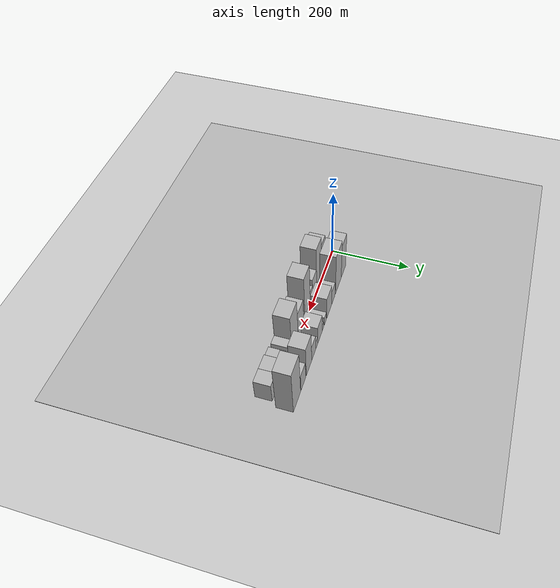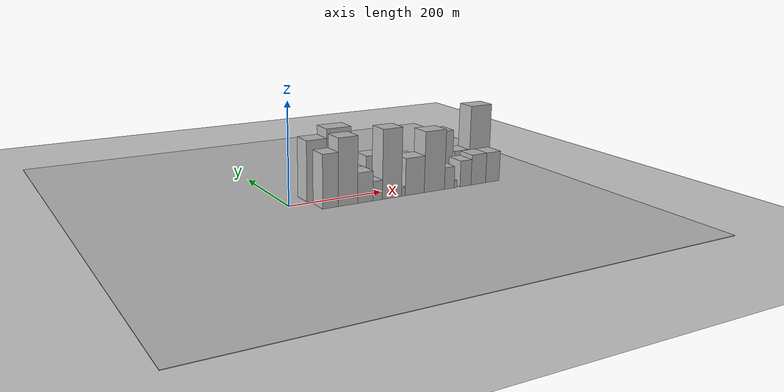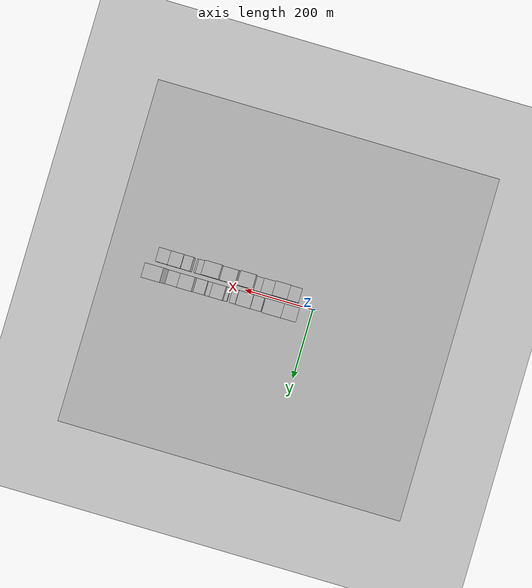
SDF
<?xml version="1.0" encoding="utf-8"?>

<sdf version="1.6">

   <world name="default">

      <gui fullscreen="0">

         <camera name="user_camera">

            <pose>-15 0 4.57585 0 0 0</pose>

            <view_controller>orbit</view_controller>

         </camera>

      </gui>

      <scene>

         <sky>

           <clouds>

             <speed>12</speed>

           </clouds>

         </sky>

         <ambient>0.4 0.4 0.4 1</ambient>

         <background>0.7 0.7 0.7 1</background>

         <shadows>1</shadows>

      </scene>

      <gravity>0 0 -9.8066</gravity>

      <magnetic_field>6e-06 2.3e-05 -4.2e-05</magnetic_field>

      <physics default="0" name="default_physics" type="ode">

         <ode>

            <solver>

               <type>quick</type>

               <iters>10</iters>

               <sor>1.0</sor>

               <use_dynamic_moi_rescaling>0</use_dynamic_moi_rescaling>

            </solver>

            <constraints>

               <cfm>0</cfm>

               <erp>0.2</erp>

               <contact_max_correcting_vel>100</contact_max_correcting_vel>

               <contact_surface_layer>0.001</contact_surface_layer>

            </constraints>

         </ode>

         <max_step_size>0.004</max_step_size>

         <real_time_factor>1</real_time_factor>

         <real_time_update_rate>250</real_time_update_rate>

      </physics>

      <light name="sun" type="directional">

         <cast_shadows>1</cast_shadows>

         <pose>0 0 10 0 0 0</pose>

         <diffuse>0.8 0.8 0.8 1</diffuse>

         <specular>0.2 0.2 0.2 1</specular>

         <attenuation>

            <range>1000</range>

            <constant>0.9</constant>

            <linear>0.01</linear>

            <quadratic>0.001</quadratic>

         </attenuation>

         <direction>-0.5 0.1 -0.9</direction>

      </light>

      <include>

         <name>ground_plane_1</name>

         <uri>model://HANNAS_ground_plane</uri>

         <pose>0 0 0  0 0 0</pose>

      </include>

      <include>

         <name>ground_plane_2</name>

         <uri>model://HANNAS_ground_plane</uri>

         <pose>100 0 0  0 0 0</pose>

      </include>

      <model name="building_1">

         <static>1</static>

         <pose frame="">61.1157 26.0000 0 0.000000 0.000000 1.570796</pose>

         <link name="link">

            <pose frame="">0 0 60.00 0 0 0</pose>

            <collision name="collision">

               <geometry>

                  <box>

                     <size>40.0000 42.2314 120.0000</size>

                  </box>

               </geometry>

               <max_contacts>10</max_contacts>

               <surface>

                  <contact>

                     <ode/>

                  </contact>

                  <bounce/>

                  <friction>

                     <torsional>

                        <ode/>

                     </torsional>

                     <ode/>

                  </friction>

               </surface>

            </collision>

            <visual name="visual">

               <cast_shadows>0</cast_shadows>

               <geometry>

                  <box>

                     <size>40.0000 42.2314 120.0000</size>

                  </box>

               </geometry>

               <material>

                  <script>

                     <uri>model://HANNAS_wall/materials/scripts</uri>

                     <uri>model://HANNAS_wall/materials/textures</uri>

                     <name>vrc/HANNAS_wall</name>

                  </script>

               </material>

            </visual>

            <self_collide>0</self_collide>

            <enable_wind>0</enable_wind>

            <kinematic>0</kinematic>

         </link>

      </model>

      <model name="building_2">

         <static>1</static>

         <pose frame="">108.6047 26.0000 0 0.000000 0.000000 1.570796</pose>

         <link name="link">

            <pose frame="">0 0 69.00 0 0 0</pose>

            <collision name="collision">

               <geometry>

                  <box>

                     <size>40.0000 52.7466 138.0000</size>

                  </box>

               </geometry>

               <max_contacts>10</max_contacts>

               <surface>

                  <contact>

                     <ode/>

                  </contact>

                  <bounce/>

                  <friction>

                     <torsional>

                        <ode/>

                     </torsional>

                     <ode/>

                  </friction>

               </surface>

            </collision>

            <visual name="visual">

               <cast_shadows>0</cast_shadows>

               <geometry>

                  <box>

                     <size>40.0000 52.7466 138.0000</size>

                  </box>

               </geometry>

               <material>

                  <script>

                     <uri>model://HANNAS_wall/materials/scripts</uri>

                     <uri>model://HANNAS_wall/materials/textures</uri>

                     <name>vrc/HANNAS_wall</name>

                  </script>

               </material>

            </visual>

            <self_collide>0</self_collide>

            <enable_wind>0</enable_wind>

            <kinematic>0</kinematic>

         </link>

      </model>

      <model name="building_3">

         <static>1</static>

         <pose frame="">154.1346 26.0000 0 0.000000 0.000000 1.570796</pose>

         <link name="link">

            <pose frame="">0 0 25.50 0 0 0</pose>

            <collision name="collision">

               <geometry>

                  <box>

                     <size>40.0000 30.3133 51.0000</size>

                  </box>

               </geometry>

               <max_contacts>10</max_contacts>

               <surface>

                  <contact>

                     <ode/>

                  </contact>

                  <bounce/>

                  <friction>

                     <torsional>

                        <ode/>

                     </torsional>

                     <ode/>

                  </friction>

               </surface>

            </collision>

            <visual name="visual">

               <cast_shadows>0</cast_shadows>

               <geometry>

                  <box>

                     <size>40.0000 30.3133 51.0000</size>

                  </box>

               </geometry>

               <material>

                  <script>

                     <uri>model://HANNAS_wall/materials/scripts</uri>

                     <uri>model://HANNAS_wall/materials/textures</uri>

                     <name>vrc/HANNAS_wall</name>

                  </script>

               </material>

            </visual>

            <self_collide>0</self_collide>

            <enable_wind>0</enable_wind>

            <kinematic>0</kinematic>

         </link>

      </model>

      <model name="building_4">

         <static>1</static>

         <pose frame="">189.9944 26.0000 0 0.000000 0.000000 1.570796</pose>

         <link name="link">

            <pose frame="">0 0 37.50 0 0 0</pose>

            <collision name="collision">

               <geometry>

                  <box>

                     <size>40.0000 41.4063 75.0000</size>

                  </box>

               </geometry>

               <max_contacts>10</max_contacts>

               <surface>

                  <contact>

                     <ode/>

                  </contact>

                  <bounce/>

                  <friction>

                     <torsional>

                        <ode/>

                     </torsional>

                     <ode/>

                  </friction>

               </surface>

            </collision>

            <visual name="visual">

               <cast_shadows>0</cast_shadows>

               <geometry>

                  <box>

                     <size>40.0000 41.4063 75.0000</size>

                  </box>

               </geometry>

               <material>

                  <script>

                     <uri>model://HANNAS_wall/materials/scripts</uri>

                     <uri>model://HANNAS_wall/materials/textures</uri>

                     <name>vrc/HANNAS_wall</name>

                  </script>

               </material>

            </visual>

            <self_collide>0</self_collide>

            <enable_wind>0</enable_wind>

            <kinematic>0</kinematic>

         </link>

      </model>

      <model name="building_5">

         <static>1</static>

         <pose frame="">222.4743 26.0000 0 0.000000 0.000000 1.570796</pose>

         <link name="link">

            <pose frame="">0 0 15.00 0 0 0</pose>

            <collision name="collision">

               <geometry>

                  <box>

                     <size>40.0000 17.5535 30.0000</size>

                  </box>

               </geometry>

               <max_contacts>10</max_contacts>

               <surface>

                  <contact>

                     <ode/>

                  </contact>

                  <bounce/>

                  <friction>

                     <torsional>

                        <ode/>

                     </torsional>

                     <ode/>

                  </friction>

               </surface>

            </collision>

            <visual name="visual">

               <cast_shadows>0</cast_shadows>

               <geometry>

                  <box>

                     <size>40.0000 17.5535 30.0000</size>

                  </box>

               </geometry>

               <material>

                  <script>

                     <uri>model://HANNAS_wall/materials/scripts</uri>

                     <uri>model://HANNAS_wall/materials/textures</uri>

                     <name>vrc/HANNAS_wall</name>

                  </script>

               </material>

            </visual>

            <self_collide>0</self_collide>

            <enable_wind>0</enable_wind>

            <kinematic>0</kinematic>

         </link>

      </model>

      <model name="building_6">

         <static>1</static>

         <pose frame="">243.4711 26.0000 0 0.000000 0.000000 1.570796</pose>

         <link name="link">

            <pose frame="">0 0 12.00 0 0 0</pose>

            <collision name="collision">

               <geometry>

                  <box>

                     <size>40.0000 10.4401 24.0000</size>

                  </box>

               </geometry>

               <max_contacts>10</max_contacts>

               <surface>

                  <contact>

                     <ode/>

                  </contact>

                  <bounce/>

                  <friction>

                     <torsional>

                        <ode/>

                     </torsional>

                     <ode/>

                  </friction>

               </surface>

            </collision>

            <visual name="visual">

               <cast_shadows>0</cast_shadows>

               <geometry>

                  <box>

                     <size>40.0000 10.4401 24.0000</size>

                  </box>

               </geometry>

               <material>

                  <script>

                     <uri>model://HANNAS_wall/materials/scripts</uri>

                     <uri>model://HANNAS_wall/materials/textures</uri>

                     <name>vrc/HANNAS_wall</name>

                  </script>

               </material>

            </visual>

            <self_collide>0</self_collide>

            <enable_wind>0</enable_wind>

            <kinematic>0</kinematic>

         </link>

      </model>

      <model name="building_7">

         <static>1</static>

         <pose frame="">267.3590 26.0000 0 0.000000 0.000000 1.570796</pose>

         <link name="link">

            <pose frame="">0 0 31.50 0 0 0</pose>

            <collision name="collision">

               <geometry>

                  <box>

                     <size>40.0000 37.3355 63.0000</size>

                  </box>

               </geometry>

               <max_contacts>10</max_contacts>

               <surface>

                  <contact>

                     <ode/>

                  </contact>

                  <bounce/>

                  <friction>

                     <torsional>

                        <ode/>

                     </torsional>

                     <ode/>

                  </friction>

               </surface>

            </collision>

            <visual name="visual">

               <cast_shadows>0</cast_shadows>

               <geometry>

                  <box>

                     <size>40.0000 37.3355 63.0000</size>

                  </box>

               </geometry>

               <material>

                  <script>

                     <uri>model://HANNAS_wall/materials/scripts</uri>

                     <uri>model://HANNAS_wall/materials/textures</uri>

                     <name>vrc/HANNAS_wall</name>

                  </script>

               </material>

            </visual>

            <self_collide>0</self_collide>

            <enable_wind>0</enable_wind>

            <kinematic>0</kinematic>

         </link>

      </model>

      <model name="building_8">

         <static>1</static>

         <pose frame="">293.7694 26.0000 0 0.000000 0.000000 1.570796</pose>

         <link name="link">

            <pose frame="">0 0 15.00 0 0 0</pose>

            <collision name="collision">

               <geometry>

                  <box>

                     <size>40.0000 15.4853 30.0000</size>

                  </box>

               </geometry>

               <max_contacts>10</max_contacts>

               <surface>

                  <contact>

                     <ode/>

                  </contact>

                  <bounce/>

                  <friction>

                     <torsional>

                        <ode/>

                     </torsional>

                     <ode/>

                  </friction>

               </surface>

            </collision>

            <visual name="visual">

               <cast_shadows>0</cast_shadows>

               <geometry>

                  <box>

                     <size>40.0000 15.4853 30.0000</size>

                  </box>

               </geometry>

               <material>

                  <script>

                     <uri>model://HANNAS_wall/materials/scripts</uri>

                     <uri>model://HANNAS_wall/materials/textures</uri>

                     <name>vrc/HANNAS_wall</name>

                  </script>

               </material>

            </visual>

            <self_collide>0</self_collide>

            <enable_wind>0</enable_wind>

            <kinematic>0</kinematic>

         </link>

      </model>

      <model name="building_9">

         <static>1</static>

         <pose frame="">317.3973 26.0000 0 0.000000 0.000000 1.570796</pose>

         <link name="link">

            <pose frame="">0 0 27.00 0 0 0</pose>

            <collision name="collision">

               <geometry>

                  <box>

                     <size>40.0000 31.7705 54.0000</size>

                  </box>

               </geometry>

               <max_contacts>10</max_contacts>

               <surface>

                  <contact>

                     <ode/>

                  </contact>

                  <bounce/>

                  <friction>

                     <torsional>

                        <ode/>

                     </torsional>

                     <ode/>

                  </friction>

               </surface>

            </collision>

            <visual name="visual">

               <cast_shadows>0</cast_shadows>

               <geometry>

                  <box>

                     <size>40.0000 31.7705 54.0000</size>

                  </box>

               </geometry>

               <material>

                  <script>

                     <uri>model://HANNAS_wall/materials/scripts</uri>

                     <uri>model://HANNAS_wall/materials/textures</uri>

                     <name>vrc/HANNAS_wall</name>

                  </script>

               </material>

            </visual>

            <self_collide>0</self_collide>

            <enable_wind>0</enable_wind>

            <kinematic>0</kinematic>

         </link>

      </model>

      <model name="building_10">

         <static>1</static>

         <pose frame="">353.7709 26.0000 0 0.000000 0.000000 1.570796</pose>

         <link name="link">

            <pose frame="">0 0 52.50 0 0 0</pose>

            <collision name="collision">

               <geometry>

                  <box>

                     <size>40.0000 40.9767 105.0000</size>

                  </box>

               </geometry>

               <max_contacts>10</max_contacts>

               <surface>

                  <contact>

                     <ode/>

                  </contact>

                  <bounce/>

                  <friction>

                     <torsional>

                        <ode/>

                     </torsional>

                     <ode/>

                  </friction>

               </surface>

            </collision>

            <visual name="visual">

               <cast_shadows>0</cast_shadows>

               <geometry>

                  <box>

                     <size>40.0000 40.9767 105.0000</size>

                  </box>

               </geometry>

               <material>

                  <script>

                     <uri>model://HANNAS_wall/materials/scripts</uri>

                     <uri>model://HANNAS_wall/materials/textures</uri>

                     <name>vrc/HANNAS_wall</name>

                  </script>

               </material>

            </visual>

            <self_collide>0</self_collide>

            <enable_wind>0</enable_wind>

            <kinematic>0</kinematic>

         </link>

      </model>

      <model name="building_11">

         <static>1</static>

         <pose frame="">395.6254 26.0000 0 0.000000 0.000000 1.570796</pose>

         <link name="link">

            <pose frame="">0 0 30.00 0 0 0</pose>

            <collision name="collision">

               <geometry>

                  <box>

                     <size>40.0000 34.7324 60.0000</size>

                  </box>

               </geometry>

               <max_contacts>10</max_contacts>

               <surface>

                  <contact>

                     <ode/>

                  </contact>

                  <bounce/>

                  <friction>

                     <torsional>

                        <ode/>

                     </torsional>

                     <ode/>

                  </friction>

               </surface>

            </collision>

            <visual name="visual">

               <cast_shadows>0</cast_shadows>

               <geometry>

                  <box>

                     <size>40.0000 34.7324 60.0000</size>

                  </box>

               </geometry>

               <material>

                  <script>

                     <uri>model://HANNAS_wall/materials/scripts</uri>

                     <uri>model://HANNAS_wall/materials/textures</uri>

                     <name>vrc/HANNAS_wall</name>

                  </script>

               </material>

            </visual>

            <self_collide>0</self_collide>

            <enable_wind>0</enable_wind>

            <kinematic>0</kinematic>

         </link>

      </model>

      <model name="building_12">

         <static>1</static>

         <pose frame="">441.6697 26.0000 0 0.000000 0.000000 1.570796</pose>

         <link name="link">

            <pose frame="">0 0 75.00 0 0 0</pose>

            <collision name="collision">

               <geometry>

                  <box>

                     <size>40.0000 51.3561 150.0000</size>

                  </box>

               </geometry>

               <max_contacts>10</max_contacts>

               <surface>

                  <contact>

                     <ode/>

                  </contact>

                  <bounce/>

                  <friction>

                     <torsional>

                        <ode/>

                     </torsional>

                     <ode/>

                  </friction>

               </surface>

            </collision>

            <visual name="visual">

               <cast_shadows>0</cast_shadows>

               <geometry>

                  <box>

                     <size>40.0000 51.3561 150.0000</size>

                  </box>

               </geometry>

               <material>

                  <script>

                     <uri>model://HANNAS_wall/materials/scripts</uri>

                     <uri>model://HANNAS_wall/materials/textures</uri>

                     <name>vrc/HANNAS_wall</name>

                  </script>

               </material>

            </visual>

            <self_collide>0</self_collide>

            <enable_wind>0</enable_wind>

            <kinematic>0</kinematic>

         </link>

      </model>

      <model name="building_13">

         <static>1</static>

         <pose frame="">63.2880 -26.0000 0 0.000000 0.000000 1.570796</pose>

         <link name="link">

            <pose frame="">0 0 52.50 0 0 0</pose>

            <collision name="collision">

               <geometry>

                  <box>

                     <size>40.0000 32.5760 105.0000</size>

                  </box>

               </geometry>

               <max_contacts>10</max_contacts>

               <surface>

                  <contact>

                     <ode/>

                  </contact>

                  <bounce/>

                  <friction>

                     <torsional>

                        <ode/>

                     </torsional>

                     <ode/>

                  </friction>

               </surface>

            </collision>

            <visual name="visual">

               <cast_shadows>0</cast_shadows>

               <geometry>

                  <box>

                     <size>40.0000 32.5760 105.0000</size>

                  </box>

               </geometry>

               <material>

                  <script>

                     <uri>model://HANNAS_wall/materials/scripts</uri>

                     <uri>model://HANNAS_wall/materials/textures</uri>

                     <name>vrc/HANNAS_wall</name>

                  </script>

               </material>

            </visual>

            <self_collide>0</self_collide>

            <enable_wind>0</enable_wind>

            <kinematic>0</kinematic>

         </link>

      </model>

      <model name="building_14">

         <static>1</static>

         <pose frame="">100.4013 -26.0000 0 0.000000 0.000000 1.570796</pose>

         <link name="link">

            <pose frame="">0 0 66.00 0 0 0</pose>

            <collision name="collision">

               <geometry>

                  <box>

                     <size>40.0000 41.6508 132.0000</size>

                  </box>

               </geometry>

               <max_contacts>10</max_contacts>

               <surface>

                  <contact>

                     <ode/>

                  </contact>

                  <bounce/>

                  <friction>

                     <torsional>

                        <ode/>

                     </torsional>

                     <ode/>

                  </friction>

               </surface>

            </collision>

            <visual name="visual">

               <cast_shadows>0</cast_shadows>

               <geometry>

                  <box>

                     <size>40.0000 41.6508 132.0000</size>

                  </box>

               </geometry>

               <material>

                  <script>

                     <uri>model://HANNAS_wall/materials/scripts</uri>

                     <uri>model://HANNAS_wall/materials/textures</uri>

                     <name>vrc/HANNAS_wall</name>

                  </script>

               </material>

            </visual>

            <self_collide>0</self_collide>

            <enable_wind>0</enable_wind>

            <kinematic>0</kinematic>

         </link>

      </model>

      <model name="building_15">

         <static>1</static>

         <pose frame="">137.9623 -26.0000 0 0.000000 0.000000 1.570796</pose>

         <link name="link">

            <pose frame="">0 0 30.00 0 0 0</pose>

            <collision name="collision">

               <geometry>

                  <box>

                     <size>40.0000 33.4712 60.0000</size>

                  </box>

               </geometry>

               <max_contacts>10</max_contacts>

               <surface>

                  <contact>

                     <ode/>

                  </contact>

                  <bounce/>

                  <friction>

                     <torsional>

                        <ode/>

                     </torsional>

                     <ode/>

                  </friction>

               </surface>

            </collision>

            <visual name="visual">

               <cast_shadows>0</cast_shadows>

               <geometry>

                  <box>

                     <size>40.0000 33.4712 60.0000</size>

                  </box>

               </geometry>

               <material>

                  <script>

                     <uri>model://HANNAS_wall/materials/scripts</uri>

                     <uri>model://HANNAS_wall/materials/textures</uri>

                     <name>vrc/HANNAS_wall</name>

                  </script>

               </material>

            </visual>

            <self_collide>0</self_collide>

            <enable_wind>0</enable_wind>

            <kinematic>0</kinematic>

         </link>

      </model>

      <model name="building_16">

         <static>1</static>

         <pose frame="">165.0744 -26.0000 0 0.000000 0.000000 1.570796</pose>

         <link name="link">

            <pose frame="">0 0 19.50 0 0 0</pose>

            <collision name="collision">

               <geometry>

                  <box>

                     <size>40.0000 20.7530 39.0000</size>

                  </box>

               </geometry>

               <max_contacts>10</max_contacts>

               <surface>

                  <contact>

                     <ode/>

                  </contact>

                  <bounce/>

                  <friction>

                     <torsional>

                        <ode/>

                     </torsional>

                     <ode/>

                  </friction>

               </surface>

            </collision>

            <visual name="visual">

               <cast_shadows>0</cast_shadows>

               <geometry>

                  <box>

                     <size>40.0000 20.7530 39.0000</size>

                  </box>

               </geometry>

               <material>

                  <script>

                     <uri>model://HANNAS_wall/materials/scripts</uri>

                     <uri>model://HANNAS_wall/materials/textures</uri>

                     <name>vrc/HANNAS_wall</name>

                  </script>

               </material>

            </visual>

            <self_collide>0</self_collide>

            <enable_wind>0</enable_wind>

            <kinematic>0</kinematic>

         </link>

      </model>

      <model name="building_17">

         <static>1</static>

         <pose frame="">197.0286 -26.0000 0 0.000000 0.000000 1.570796</pose>

         <link name="link">

            <pose frame="">0 0 69.00 0 0 0</pose>

            <collision name="collision">

               <geometry>

                  <box>

                     <size>40.0000 43.1554 138.0000</size>

                  </box>

               </geometry>

               <max_contacts>10</max_contacts>

               <surface>

                  <contact>

                     <ode/>

                  </contact>

                  <bounce/>

                  <friction>

                     <torsional>

                        <ode/>

                     </torsional>

                     <ode/>

                  </friction>

               </surface>

            </collision>

            <visual name="visual">

               <cast_shadows>0</cast_shadows>

               <geometry>

                  <box>

                     <size>40.0000 43.1554 138.0000</size>

                  </box>

               </geometry>

               <material>

                  <script>

                     <uri>model://HANNAS_wall/materials/scripts</uri>

                     <uri>model://HANNAS_wall/materials/textures</uri>

                     <name>vrc/HANNAS_wall</name>

                  </script>

               </material>

            </visual>

            <self_collide>0</self_collide>

            <enable_wind>0</enable_wind>

            <kinematic>0</kinematic>

         </link>

      </model>

      <model name="building_18">

         <static>1</static>

         <pose frame="">222.9706 -26.0000 0 0.000000 0.000000 1.570796</pose>

         <link name="link">

            <pose frame="">0 0 9.00 0 0 0</pose>

            <collision name="collision">

               <geometry>

                  <box>

                     <size>40.0000 8.7285 18.0000</size>

                  </box>

               </geometry>

               <max_contacts>10</max_contacts>

               <surface>

                  <contact>

                     <ode/>

                  </contact>

                  <bounce/>

                  <friction>

                     <torsional>

                        <ode/>

                     </torsional>

                     <ode/>

                  </friction>

               </surface>

            </collision>

            <visual name="visual">

               <cast_shadows>0</cast_shadows>

               <geometry>

                  <box>

                     <size>40.0000 8.7285 18.0000</size>

                  </box>

               </geometry>

               <material>

                  <script>

                     <uri>model://HANNAS_wall/materials/scripts</uri>

                     <uri>model://HANNAS_wall/materials/textures</uri>

                     <name>vrc/HANNAS_wall</name>

                  </script>

               </material>

            </visual>

            <self_collide>0</self_collide>

            <enable_wind>0</enable_wind>

            <kinematic>0</kinematic>

         </link>

      </model>

      <model name="building_19">

         <static>1</static>

         <pose frame="">249.3120 -26.0000 0 0.000000 0.000000 1.570796</pose>

         <link name="link">

            <pose frame="">0 0 37.50 0 0 0</pose>

            <collision name="collision">

               <geometry>

                  <box>

                     <size>40.0000 43.9543 75.0000</size>

                  </box>

               </geometry>

               <max_contacts>10</max_contacts>

               <surface>

                  <contact>

                     <ode/>

                  </contact>

                  <bounce/>

                  <friction>

                     <torsional>

                        <ode/>

                     </torsional>

                     <ode/>

                  </friction>

               </surface>

            </collision>

            <visual name="visual">

               <cast_shadows>0</cast_shadows>

               <geometry>

                  <box>

                     <size>40.0000 43.9543 75.0000</size>

                  </box>

               </geometry>

               <material>

                  <script>

                     <uri>model://HANNAS_wall/materials/scripts</uri>

                     <uri>model://HANNAS_wall/materials/textures</uri>

                     <name>vrc/HANNAS_wall</name>

                  </script>

               </material>

            </visual>

            <self_collide>0</self_collide>

            <enable_wind>0</enable_wind>

            <kinematic>0</kinematic>

         </link>

      </model>

      <model name="building_20">

         <static>1</static>

         <pose frame="">295.3145 -26.0000 0 0.000000 0.000000 1.570796</pose>

         <link name="link">

            <pose frame="">0 0 61.50 0 0 0</pose>

            <collision name="collision">

               <geometry>

                  <box>

                     <size>40.0000 48.0508 123.0000</size>

                  </box>

               </geometry>

               <max_contacts>10</max_contacts>

               <surface>

                  <contact>

                     <ode/>

                  </contact>

                  <bounce/>

                  <friction>

                     <torsional>

                        <ode/>

                     </torsional>

                     <ode/>

                  </friction>

               </surface>

            </collision>

            <visual name="visual">

               <cast_shadows>0</cast_shadows>

               <geometry>

                  <box>

                     <size>40.0000 48.0508 123.0000</size>

                  </box>

               </geometry>

               <material>

                  <script>

                     <uri>model://HANNAS_wall/materials/scripts</uri>

                     <uri>model://HANNAS_wall/materials/textures</uri>

                     <name>vrc/HANNAS_wall</name>

                  </script>

               </material>

            </visual>

            <self_collide>0</self_collide>

            <enable_wind>0</enable_wind>

            <kinematic>0</kinematic>

         </link>

      </model>

      <model name="building_21">

         <static>1</static>

         <pose frame="">331.0800 -26.0000 0 0.000000 0.000000 1.570796</pose>

         <link name="link">

            <pose frame="">0 0 22.50 0 0 0</pose>

            <collision name="collision">

               <geometry>

                  <box>

                     <size>40.0000 23.4801 45.0000</size>

                  </box>

               </geometry>

               <max_contacts>10</max_contacts>

               <surface>

                  <contact>

                     <ode/>

                  </contact>

                  <bounce/>

                  <friction>

                     <torsional>

                        <ode/>

                     </torsional>

                     <ode/>

                  </friction>

               </surface>

            </collision>

            <visual name="visual">

               <cast_shadows>0</cast_shadows>

               <geometry>

                  <box>

                     <size>40.0000 23.4801 45.0000</size>

                  </box>

               </geometry>

               <material>

                  <script>

                     <uri>model://HANNAS_wall/materials/scripts</uri>

                     <uri>model://HANNAS_wall/materials/textures</uri>

                     <name>vrc/HANNAS_wall</name>

                  </script>

               </material>

            </visual>

            <self_collide>0</self_collide>

            <enable_wind>0</enable_wind>

            <kinematic>0</kinematic>

         </link>

      </model>

      <model name="building_22">

         <static>1</static>

         <pose frame="">346.4494 -26.0000 0 0.000000 0.000000 1.570796</pose>

         <link name="link">

            <pose frame="">0 0 7.50 0 0 0</pose>

            <collision name="collision">

               <geometry>

                  <box>

                     <size>40.0000 7.2588 15.0000</size>

                  </box>

               </geometry>

               <max_contacts>10</max_contacts>

               <surface>

                  <contact>

                     <ode/>

                  </contact>

                  <bounce/>

                  <friction>

                     <torsional>

                        <ode/>

                     </torsional>

                     <ode/>

                  </friction>

               </surface>

            </collision>

            <visual name="visual">

               <cast_shadows>0</cast_shadows>

               <geometry>

                  <box>

                     <size>40.0000 7.2588 15.0000</size>

                  </box>

               </geometry>

               <material>

                  <script>

                     <uri>model://HANNAS_wall/materials/scripts</uri>

                     <uri>model://HANNAS_wall/materials/textures</uri>

                     <name>vrc/HANNAS_wall</name>

                  </script>

               </material>

            </visual>

            <self_collide>0</self_collide>

            <enable_wind>0</enable_wind>

            <kinematic>0</kinematic>

         </link>

      </model>

      <model name="building_23">

         <static>1</static>

         <pose frame="">370.6458 -26.0000 0 0.000000 0.000000 1.570796</pose>

         <link name="link">

            <pose frame="">0 0 27.00 0 0 0</pose>

            <collision name="collision">

               <geometry>

                  <box>

                     <size>40.0000 27.1340 54.0000</size>

                  </box>

               </geometry>

               <max_contacts>10</max_contacts>

               <surface>

                  <contact>

                     <ode/>

                  </contact>

                  <bounce/>

                  <friction>

                     <torsional>

                        <ode/>

                     </torsional>

                     <ode/>

                  </friction>

               </surface>

            </collision>

            <visual name="visual">

               <cast_shadows>0</cast_shadows>

               <geometry>

                  <box>

                     <size>40.0000 27.1340 54.0000</size>

                  </box>

               </geometry>

               <material>

                  <script>

                     <uri>model://HANNAS_wall/materials/scripts</uri>

                     <uri>model://HANNAS_wall/materials/textures</uri>

                     <name>vrc/HANNAS_wall</name>

                  </script>

               </material>

            </visual>

            <self_collide>0</self_collide>

            <enable_wind>0</enable_wind>

            <kinematic>0</kinematic>

         </link>

      </model>

      <model name="building_24">

         <static>1</static>

         <pose frame="">402.4902 -26.0000 0 0.000000 0.000000 1.570796</pose>

         <link name="link">

            <pose frame="">0 0 31.50 0 0 0</pose>

            <collision name="collision">

               <geometry>

                  <box>

                     <size>40.0000 36.5549 63.0000</size>

                  </box>

               </geometry>

               <max_contacts>10</max_contacts>

               <surface>

                  <contact>

                     <ode/>

                  </contact>

                  <bounce/>

                  <friction>

                     <torsional>

                        <ode/>

                     </torsional>

                     <ode/>

                  </friction>

               </surface>

            </collision>

            <visual name="visual">

               <cast_shadows>0</cast_shadows>

               <geometry>

                  <box>

                     <size>40.0000 36.5549 63.0000</size>

                  </box>

               </geometry>

               <material>

                  <script>

                     <uri>model://HANNAS_wall/materials/scripts</uri>

                     <uri>model://HANNAS_wall/materials/textures</uri>

                     <name>vrc/HANNAS_wall</name>

                  </script>

               </material>

            </visual>

            <self_collide>0</self_collide>

            <enable_wind>0</enable_wind>

            <kinematic>0</kinematic>

         </link>

      </model>

      <model name="building_25">

         <static>1</static>

         <pose frame="">437.9600 -26.0000 0 0.000000 0.000000 1.570796</pose>

         <link name="link">

            <pose frame="">0 0 31.50 0 0 0</pose>

            <collision name="collision">

               <geometry>

                  <box>

                     <size>40.0000 34.3847 63.0000</size>

                  </box>

               </geometry>

               <max_contacts>10</max_contacts>

               <surface>

                  <contact>

                     <ode/>

                  </contact>

                  <bounce/>

                  <friction>

                     <torsional>

                        <ode/>

                     </torsional>

                     <ode/>

                  </friction>

               </surface>

            </collision>

            <visual name="visual">

               <cast_shadows>0</cast_shadows>

               <geometry>

                  <box>

                     <size>40.0000 34.3847 63.0000</size>

                  </box>

               </geometry>

               <material>

                  <script>

                     <uri>model://HANNAS_wall/materials/scripts</uri>

                     <uri>model://HANNAS_wall/materials/textures</uri>

                     <name>vrc/HANNAS_wall</name>

                  </script>

               </material>

            </visual>

            <self_collide>0</self_collide>

            <enable_wind>0</enable_wind>

            <kinematic>0</kinematic>

         </link>

      </model>

   </world>

</sdf>

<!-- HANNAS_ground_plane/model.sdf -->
<sdf version="1.4">
<model name="HANNAS_ground_plane">
  <static>true</static>
    <link name="link">
      <collision name="collision">
        <geometry>
          <plane>
            <normal>0 0 1</normal>
            <size>1000 1000</size>
          </plane>
        </geometry>
        <surface>
          <friction>
            <ode>
              <mu>100</mu>
              <mu2>50</mu2>
            </ode>
          </friction>
        </surface>
      </collision>
      <visual name="visual">
        <cast_shadows>false</cast_shadows>
        <geometry>
          <plane>
            <normal>0 0 1</normal>
            <size>1000 1000</size>
          </plane>
        </geometry>
        <material>
          <script>
            <uri>model://HANNAS_ground_plane/materials/scripts/HANNAS_ground_plane.material</uri>
	    <uri>model://HANNAS_ground_plane/materials/textures</uri>
            <name>HANNASGroundPlane/Image</name>
          </script>
        </material>
      </visual>
    </link>
  </model>
</sdf>
